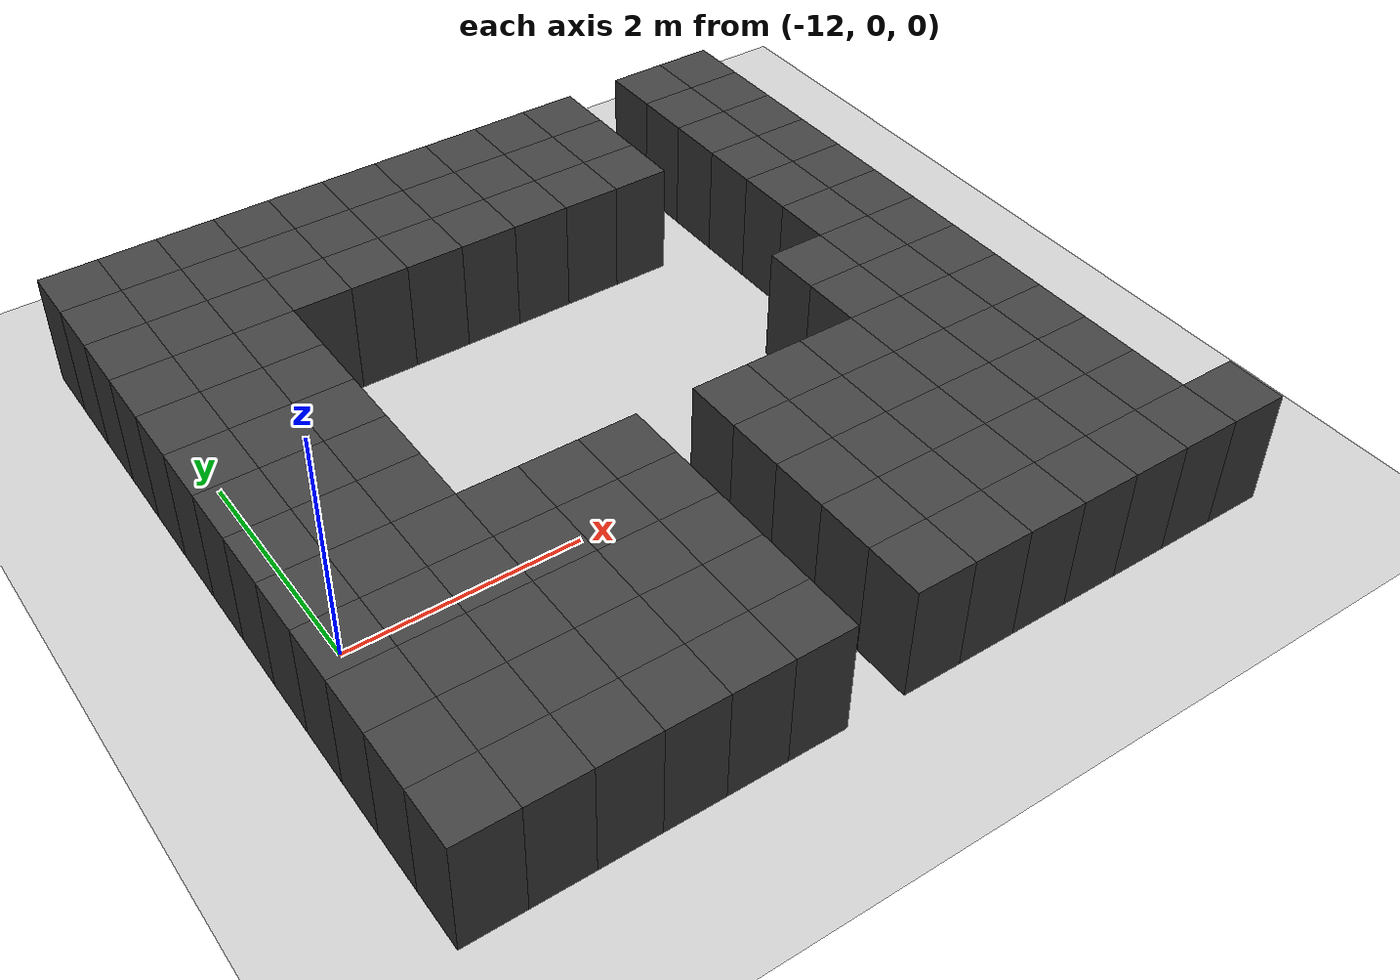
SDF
<sdf version="1.7">
 <world name="map_13994">
  <model name="ground_plane">
   <static>true</static>
   <link name="link">
    <collision name="collision">
     <geometry><plane><normal>0 0 1</normal><size>200 200</size></plane></geometry>
    </collision>
    <visual name="visual">
     <geometry><plane><normal>0 0 1</normal><size>200 200</size></plane></geometry>
     <material><ambient>0.8 0.8 0.8 1</ambient><diffuse>0.8 0.8 0.8 1</diffuse></material>
    </visual>
   </link>
  </model>
  <model name="maze_environment">
   <static>true</static>
   <link name="wall_521">
    <pose>-12.250 3.750 0.500 0 0 0</pose>
    <collision name="col"><geometry><box><size>0.5 0.5 1.0</size></box></geometry></collision>
    <visual name="vis">
     <geometry><box><size>0.5 0.5 1.0</size></box></geometry>
     <material><ambient>0.15 0.15 0.15 1</ambient><diffuse>0.25 0.25 0.25 1</diffuse></material>
    </visual>
   </link>
   <link name="wall_522">
    <pose>-11.750 3.750 0.500 0 0 0</pose>
    <collision name="col"><geometry><box><size>0.5 0.5 1.0</size></box></geometry></collision>
    <visual name="vis">
     <geometry><box><size>0.5 0.5 1.0</size></box></geometry>
     <material><ambient>0.15 0.15 0.15 1</ambient><diffuse>0.25 0.25 0.25 1</diffuse></material>
    </visual>
   </link>
   <link name="wall_523">
    <pose>-11.250 3.750 0.500 0 0 0</pose>
    <collision name="col"><geometry><box><size>0.5 0.5 1.0</size></box></geometry></collision>
    <visual name="vis">
     <geometry><box><size>0.5 0.5 1.0</size></box></geometry>
     <material><ambient>0.15 0.15 0.15 1</ambient><diffuse>0.25 0.25 0.25 1</diffuse></material>
    </visual>
   </link>
   <link name="wall_524">
    <pose>-10.750 3.750 0.500 0 0 0</pose>
    <collision name="col"><geometry><box><size>0.5 0.5 1.0</size></box></geometry></collision>
    <visual name="vis">
     <geometry><box><size>0.5 0.5 1.0</size></box></geometry>
     <material><ambient>0.15 0.15 0.15 1</ambient><diffuse>0.25 0.25 0.25 1</diffuse></material>
    </visual>
   </link>
   <link name="wall_525">
    <pose>-10.250 3.750 0.500 0 0 0</pose>
    <collision name="col"><geometry><box><size>0.5 0.5 1.0</size></box></geometry></collision>
    <visual name="vis">
     <geometry><box><size>0.5 0.5 1.0</size></box></geometry>
     <material><ambient>0.15 0.15 0.15 1</ambient><diffuse>0.25 0.25 0.25 1</diffuse></material>
    </visual>
   </link>
   <link name="wall_526">
    <pose>-9.750 3.750 0.500 0 0 0</pose>
    <collision name="col"><geometry><box><size>0.5 0.5 1.0</size></box></geometry></collision>
    <visual name="vis">
     <geometry><box><size>0.5 0.5 1.0</size></box></geometry>
     <material><ambient>0.15 0.15 0.15 1</ambient><diffuse>0.25 0.25 0.25 1</diffuse></material>
    </visual>
   </link>
   <link name="wall_527">
    <pose>-9.250 3.750 0.500 0 0 0</pose>
    <collision name="col"><geometry><box><size>0.5 0.5 1.0</size></box></geometry></collision>
    <visual name="vis">
     <geometry><box><size>0.5 0.5 1.0</size></box></geometry>
     <material><ambient>0.15 0.15 0.15 1</ambient><diffuse>0.25 0.25 0.25 1</diffuse></material>
    </visual>
   </link>
   <link name="wall_528">
    <pose>-8.750 3.750 0.500 0 0 0</pose>
    <collision name="col"><geometry><box><size>0.5 0.5 1.0</size></box></geometry></collision>
    <visual name="vis">
     <geometry><box><size>0.5 0.5 1.0</size></box></geometry>
     <material><ambient>0.15 0.15 0.15 1</ambient><diffuse>0.25 0.25 0.25 1</diffuse></material>
    </visual>
   </link>
   <link name="wall_529">
    <pose>-8.250 3.750 0.500 0 0 0</pose>
    <collision name="col"><geometry><box><size>0.5 0.5 1.0</size></box></geometry></collision>
    <visual name="vis">
     <geometry><box><size>0.5 0.5 1.0</size></box></geometry>
     <material><ambient>0.15 0.15 0.15 1</ambient><diffuse>0.25 0.25 0.25 1</diffuse></material>
    </visual>
   </link>
   <link name="wall_530">
    <pose>-7.750 3.750 0.500 0 0 0</pose>
    <collision name="col"><geometry><box><size>0.5 0.5 1.0</size></box></geometry></collision>
    <visual name="vis">
     <geometry><box><size>0.5 0.5 1.0</size></box></geometry>
     <material><ambient>0.15 0.15 0.15 1</ambient><diffuse>0.25 0.25 0.25 1</diffuse></material>
    </visual>
   </link>
   <link name="wall_531">
    <pose>-6.750 3.750 0.500 0 0 0</pose>
    <collision name="col"><geometry><box><size>0.5 0.5 1.0</size></box></geometry></collision>
    <visual name="vis">
     <geometry><box><size>0.5 0.5 1.0</size></box></geometry>
     <material><ambient>0.15 0.15 0.15 1</ambient><diffuse>0.25 0.25 0.25 1</diffuse></material>
    </visual>
   </link>
   <link name="wall_532">
    <pose>-6.250 3.750 0.500 0 0 0</pose>
    <collision name="col"><geometry><box><size>0.5 0.5 1.0</size></box></geometry></collision>
    <visual name="vis">
     <geometry><box><size>0.5 0.5 1.0</size></box></geometry>
     <material><ambient>0.15 0.15 0.15 1</ambient><diffuse>0.25 0.25 0.25 1</diffuse></material>
    </visual>
   </link>
   <link name="wall_561">
    <pose>-12.250 3.250 0.500 0 0 0</pose>
    <collision name="col"><geometry><box><size>0.5 0.5 1.0</size></box></geometry></collision>
    <visual name="vis">
     <geometry><box><size>0.5 0.5 1.0</size></box></geometry>
     <material><ambient>0.15 0.15 0.15 1</ambient><diffuse>0.25 0.25 0.25 1</diffuse></material>
    </visual>
   </link>
   <link name="wall_562">
    <pose>-11.750 3.250 0.500 0 0 0</pose>
    <collision name="col"><geometry><box><size>0.5 0.5 1.0</size></box></geometry></collision>
    <visual name="vis">
     <geometry><box><size>0.5 0.5 1.0</size></box></geometry>
     <material><ambient>0.15 0.15 0.15 1</ambient><diffuse>0.25 0.25 0.25 1</diffuse></material>
    </visual>
   </link>
   <link name="wall_563">
    <pose>-11.250 3.250 0.500 0 0 0</pose>
    <collision name="col"><geometry><box><size>0.5 0.5 1.0</size></box></geometry></collision>
    <visual name="vis">
     <geometry><box><size>0.5 0.5 1.0</size></box></geometry>
     <material><ambient>0.15 0.15 0.15 1</ambient><diffuse>0.25 0.25 0.25 1</diffuse></material>
    </visual>
   </link>
   <link name="wall_564">
    <pose>-10.750 3.250 0.500 0 0 0</pose>
    <collision name="col"><geometry><box><size>0.5 0.5 1.0</size></box></geometry></collision>
    <visual name="vis">
     <geometry><box><size>0.5 0.5 1.0</size></box></geometry>
     <material><ambient>0.15 0.15 0.15 1</ambient><diffuse>0.25 0.25 0.25 1</diffuse></material>
    </visual>
   </link>
   <link name="wall_565">
    <pose>-10.250 3.250 0.500 0 0 0</pose>
    <collision name="col"><geometry><box><size>0.5 0.5 1.0</size></box></geometry></collision>
    <visual name="vis">
     <geometry><box><size>0.5 0.5 1.0</size></box></geometry>
     <material><ambient>0.15 0.15 0.15 1</ambient><diffuse>0.25 0.25 0.25 1</diffuse></material>
    </visual>
   </link>
   <link name="wall_566">
    <pose>-9.750 3.250 0.500 0 0 0</pose>
    <collision name="col"><geometry><box><size>0.5 0.5 1.0</size></box></geometry></collision>
    <visual name="vis">
     <geometry><box><size>0.5 0.5 1.0</size></box></geometry>
     <material><ambient>0.15 0.15 0.15 1</ambient><diffuse>0.25 0.25 0.25 1</diffuse></material>
    </visual>
   </link>
   <link name="wall_567">
    <pose>-9.250 3.250 0.500 0 0 0</pose>
    <collision name="col"><geometry><box><size>0.5 0.5 1.0</size></box></geometry></collision>
    <visual name="vis">
     <geometry><box><size>0.5 0.5 1.0</size></box></geometry>
     <material><ambient>0.15 0.15 0.15 1</ambient><diffuse>0.25 0.25 0.25 1</diffuse></material>
    </visual>
   </link>
   <link name="wall_568">
    <pose>-8.750 3.250 0.500 0 0 0</pose>
    <collision name="col"><geometry><box><size>0.5 0.5 1.0</size></box></geometry></collision>
    <visual name="vis">
     <geometry><box><size>0.5 0.5 1.0</size></box></geometry>
     <material><ambient>0.15 0.15 0.15 1</ambient><diffuse>0.25 0.25 0.25 1</diffuse></material>
    </visual>
   </link>
   <link name="wall_569">
    <pose>-8.250 3.250 0.500 0 0 0</pose>
    <collision name="col"><geometry><box><size>0.5 0.5 1.0</size></box></geometry></collision>
    <visual name="vis">
     <geometry><box><size>0.5 0.5 1.0</size></box></geometry>
     <material><ambient>0.15 0.15 0.15 1</ambient><diffuse>0.25 0.25 0.25 1</diffuse></material>
    </visual>
   </link>
   <link name="wall_570">
    <pose>-7.750 3.250 0.500 0 0 0</pose>
    <collision name="col"><geometry><box><size>0.5 0.5 1.0</size></box></geometry></collision>
    <visual name="vis">
     <geometry><box><size>0.5 0.5 1.0</size></box></geometry>
     <material><ambient>0.15 0.15 0.15 1</ambient><diffuse>0.25 0.25 0.25 1</diffuse></material>
    </visual>
   </link>
   <link name="wall_571">
    <pose>-6.750 3.250 0.500 0 0 0</pose>
    <collision name="col"><geometry><box><size>0.5 0.5 1.0</size></box></geometry></collision>
    <visual name="vis">
     <geometry><box><size>0.5 0.5 1.0</size></box></geometry>
     <material><ambient>0.15 0.15 0.15 1</ambient><diffuse>0.25 0.25 0.25 1</diffuse></material>
    </visual>
   </link>
   <link name="wall_572">
    <pose>-6.250 3.250 0.500 0 0 0</pose>
    <collision name="col"><geometry><box><size>0.5 0.5 1.0</size></box></geometry></collision>
    <visual name="vis">
     <geometry><box><size>0.5 0.5 1.0</size></box></geometry>
     <material><ambient>0.15 0.15 0.15 1</ambient><diffuse>0.25 0.25 0.25 1</diffuse></material>
    </visual>
   </link>
   <link name="wall_601">
    <pose>-12.250 2.750 0.500 0 0 0</pose>
    <collision name="col"><geometry><box><size>0.5 0.5 1.0</size></box></geometry></collision>
    <visual name="vis">
     <geometry><box><size>0.5 0.5 1.0</size></box></geometry>
     <material><ambient>0.15 0.15 0.15 1</ambient><diffuse>0.25 0.25 0.25 1</diffuse></material>
    </visual>
   </link>
   <link name="wall_602">
    <pose>-11.750 2.750 0.500 0 0 0</pose>
    <collision name="col"><geometry><box><size>0.5 0.5 1.0</size></box></geometry></collision>
    <visual name="vis">
     <geometry><box><size>0.5 0.5 1.0</size></box></geometry>
     <material><ambient>0.15 0.15 0.15 1</ambient><diffuse>0.25 0.25 0.25 1</diffuse></material>
    </visual>
   </link>
   <link name="wall_603">
    <pose>-11.250 2.750 0.500 0 0 0</pose>
    <collision name="col"><geometry><box><size>0.5 0.5 1.0</size></box></geometry></collision>
    <visual name="vis">
     <geometry><box><size>0.5 0.5 1.0</size></box></geometry>
     <material><ambient>0.15 0.15 0.15 1</ambient><diffuse>0.25 0.25 0.25 1</diffuse></material>
    </visual>
   </link>
   <link name="wall_604">
    <pose>-10.750 2.750 0.500 0 0 0</pose>
    <collision name="col"><geometry><box><size>0.5 0.5 1.0</size></box></geometry></collision>
    <visual name="vis">
     <geometry><box><size>0.5 0.5 1.0</size></box></geometry>
     <material><ambient>0.15 0.15 0.15 1</ambient><diffuse>0.25 0.25 0.25 1</diffuse></material>
    </visual>
   </link>
   <link name="wall_605">
    <pose>-10.250 2.750 0.500 0 0 0</pose>
    <collision name="col"><geometry><box><size>0.5 0.5 1.0</size></box></geometry></collision>
    <visual name="vis">
     <geometry><box><size>0.5 0.5 1.0</size></box></geometry>
     <material><ambient>0.15 0.15 0.15 1</ambient><diffuse>0.25 0.25 0.25 1</diffuse></material>
    </visual>
   </link>
   <link name="wall_606">
    <pose>-9.750 2.750 0.500 0 0 0</pose>
    <collision name="col"><geometry><box><size>0.5 0.5 1.0</size></box></geometry></collision>
    <visual name="vis">
     <geometry><box><size>0.5 0.5 1.0</size></box></geometry>
     <material><ambient>0.15 0.15 0.15 1</ambient><diffuse>0.25 0.25 0.25 1</diffuse></material>
    </visual>
   </link>
   <link name="wall_607">
    <pose>-9.250 2.750 0.500 0 0 0</pose>
    <collision name="col"><geometry><box><size>0.5 0.5 1.0</size></box></geometry></collision>
    <visual name="vis">
     <geometry><box><size>0.5 0.5 1.0</size></box></geometry>
     <material><ambient>0.15 0.15 0.15 1</ambient><diffuse>0.25 0.25 0.25 1</diffuse></material>
    </visual>
   </link>
   <link name="wall_608">
    <pose>-8.750 2.750 0.500 0 0 0</pose>
    <collision name="col"><geometry><box><size>0.5 0.5 1.0</size></box></geometry></collision>
    <visual name="vis">
     <geometry><box><size>0.5 0.5 1.0</size></box></geometry>
     <material><ambient>0.15 0.15 0.15 1</ambient><diffuse>0.25 0.25 0.25 1</diffuse></material>
    </visual>
   </link>
   <link name="wall_609">
    <pose>-8.250 2.750 0.500 0 0 0</pose>
    <collision name="col"><geometry><box><size>0.5 0.5 1.0</size></box></geometry></collision>
    <visual name="vis">
     <geometry><box><size>0.5 0.5 1.0</size></box></geometry>
     <material><ambient>0.15 0.15 0.15 1</ambient><diffuse>0.25 0.25 0.25 1</diffuse></material>
    </visual>
   </link>
   <link name="wall_610">
    <pose>-7.750 2.750 0.500 0 0 0</pose>
    <collision name="col"><geometry><box><size>0.5 0.5 1.0</size></box></geometry></collision>
    <visual name="vis">
     <geometry><box><size>0.5 0.5 1.0</size></box></geometry>
     <material><ambient>0.15 0.15 0.15 1</ambient><diffuse>0.25 0.25 0.25 1</diffuse></material>
    </visual>
   </link>
   <link name="wall_611">
    <pose>-6.750 2.750 0.500 0 0 0</pose>
    <collision name="col"><geometry><box><size>0.5 0.5 1.0</size></box></geometry></collision>
    <visual name="vis">
     <geometry><box><size>0.5 0.5 1.0</size></box></geometry>
     <material><ambient>0.15 0.15 0.15 1</ambient><diffuse>0.25 0.25 0.25 1</diffuse></material>
    </visual>
   </link>
   <link name="wall_612">
    <pose>-6.250 2.750 0.500 0 0 0</pose>
    <collision name="col"><geometry><box><size>0.5 0.5 1.0</size></box></geometry></collision>
    <visual name="vis">
     <geometry><box><size>0.5 0.5 1.0</size></box></geometry>
     <material><ambient>0.15 0.15 0.15 1</ambient><diffuse>0.25 0.25 0.25 1</diffuse></material>
    </visual>
   </link>
   <link name="wall_637">
    <pose>-12.250 2.250 0.500 0 0 0</pose>
    <collision name="col"><geometry><box><size>0.5 0.5 1.0</size></box></geometry></collision>
    <visual name="vis">
     <geometry><box><size>0.5 0.5 1.0</size></box></geometry>
     <material><ambient>0.15 0.15 0.15 1</ambient><diffuse>0.25 0.25 0.25 1</diffuse></material>
    </visual>
   </link>
   <link name="wall_638">
    <pose>-11.750 2.250 0.500 0 0 0</pose>
    <collision name="col"><geometry><box><size>0.5 0.5 1.0</size></box></geometry></collision>
    <visual name="vis">
     <geometry><box><size>0.5 0.5 1.0</size></box></geometry>
     <material><ambient>0.15 0.15 0.15 1</ambient><diffuse>0.25 0.25 0.25 1</diffuse></material>
    </visual>
   </link>
   <link name="wall_639">
    <pose>-11.250 2.250 0.500 0 0 0</pose>
    <collision name="col"><geometry><box><size>0.5 0.5 1.0</size></box></geometry></collision>
    <visual name="vis">
     <geometry><box><size>0.5 0.5 1.0</size></box></geometry>
     <material><ambient>0.15 0.15 0.15 1</ambient><diffuse>0.25 0.25 0.25 1</diffuse></material>
    </visual>
   </link>
   <link name="wall_640">
    <pose>-6.750 2.250 0.500 0 0 0</pose>
    <collision name="col"><geometry><box><size>0.5 0.5 1.0</size></box></geometry></collision>
    <visual name="vis">
     <geometry><box><size>0.5 0.5 1.0</size></box></geometry>
     <material><ambient>0.15 0.15 0.15 1</ambient><diffuse>0.25 0.25 0.25 1</diffuse></material>
    </visual>
   </link>
   <link name="wall_641">
    <pose>-6.250 2.250 0.500 0 0 0</pose>
    <collision name="col"><geometry><box><size>0.5 0.5 1.0</size></box></geometry></collision>
    <visual name="vis">
     <geometry><box><size>0.5 0.5 1.0</size></box></geometry>
     <material><ambient>0.15 0.15 0.15 1</ambient><diffuse>0.25 0.25 0.25 1</diffuse></material>
    </visual>
   </link>
   <link name="wall_666">
    <pose>-12.250 1.750 0.500 0 0 0</pose>
    <collision name="col"><geometry><box><size>0.5 0.5 1.0</size></box></geometry></collision>
    <visual name="vis">
     <geometry><box><size>0.5 0.5 1.0</size></box></geometry>
     <material><ambient>0.15 0.15 0.15 1</ambient><diffuse>0.25 0.25 0.25 1</diffuse></material>
    </visual>
   </link>
   <link name="wall_667">
    <pose>-11.750 1.750 0.500 0 0 0</pose>
    <collision name="col"><geometry><box><size>0.5 0.5 1.0</size></box></geometry></collision>
    <visual name="vis">
     <geometry><box><size>0.5 0.5 1.0</size></box></geometry>
     <material><ambient>0.15 0.15 0.15 1</ambient><diffuse>0.25 0.25 0.25 1</diffuse></material>
    </visual>
   </link>
   <link name="wall_668">
    <pose>-11.250 1.750 0.500 0 0 0</pose>
    <collision name="col"><geometry><box><size>0.5 0.5 1.0</size></box></geometry></collision>
    <visual name="vis">
     <geometry><box><size>0.5 0.5 1.0</size></box></geometry>
     <material><ambient>0.15 0.15 0.15 1</ambient><diffuse>0.25 0.25 0.25 1</diffuse></material>
    </visual>
   </link>
   <link name="wall_669">
    <pose>-6.750 1.750 0.500 0 0 0</pose>
    <collision name="col"><geometry><box><size>0.5 0.5 1.0</size></box></geometry></collision>
    <visual name="vis">
     <geometry><box><size>0.5 0.5 1.0</size></box></geometry>
     <material><ambient>0.15 0.15 0.15 1</ambient><diffuse>0.25 0.25 0.25 1</diffuse></material>
    </visual>
   </link>
   <link name="wall_670">
    <pose>-6.250 1.750 0.500 0 0 0</pose>
    <collision name="col"><geometry><box><size>0.5 0.5 1.0</size></box></geometry></collision>
    <visual name="vis">
     <geometry><box><size>0.5 0.5 1.0</size></box></geometry>
     <material><ambient>0.15 0.15 0.15 1</ambient><diffuse>0.25 0.25 0.25 1</diffuse></material>
    </visual>
   </link>
   <link name="wall_698">
    <pose>-12.250 1.250 0.500 0 0 0</pose>
    <collision name="col"><geometry><box><size>0.5 0.5 1.0</size></box></geometry></collision>
    <visual name="vis">
     <geometry><box><size>0.5 0.5 1.0</size></box></geometry>
     <material><ambient>0.15 0.15 0.15 1</ambient><diffuse>0.25 0.25 0.25 1</diffuse></material>
    </visual>
   </link>
   <link name="wall_699">
    <pose>-11.750 1.250 0.500 0 0 0</pose>
    <collision name="col"><geometry><box><size>0.5 0.5 1.0</size></box></geometry></collision>
    <visual name="vis">
     <geometry><box><size>0.5 0.5 1.0</size></box></geometry>
     <material><ambient>0.15 0.15 0.15 1</ambient><diffuse>0.25 0.25 0.25 1</diffuse></material>
    </visual>
   </link>
   <link name="wall_700">
    <pose>-11.250 1.250 0.500 0 0 0</pose>
    <collision name="col"><geometry><box><size>0.5 0.5 1.0</size></box></geometry></collision>
    <visual name="vis">
     <geometry><box><size>0.5 0.5 1.0</size></box></geometry>
     <material><ambient>0.15 0.15 0.15 1</ambient><diffuse>0.25 0.25 0.25 1</diffuse></material>
    </visual>
   </link>
   <link name="wall_701">
    <pose>-6.750 1.250 0.500 0 0 0</pose>
    <collision name="col"><geometry><box><size>0.5 0.5 1.0</size></box></geometry></collision>
    <visual name="vis">
     <geometry><box><size>0.5 0.5 1.0</size></box></geometry>
     <material><ambient>0.15 0.15 0.15 1</ambient><diffuse>0.25 0.25 0.25 1</diffuse></material>
    </visual>
   </link>
   <link name="wall_702">
    <pose>-6.250 1.250 0.500 0 0 0</pose>
    <collision name="col"><geometry><box><size>0.5 0.5 1.0</size></box></geometry></collision>
    <visual name="vis">
     <geometry><box><size>0.5 0.5 1.0</size></box></geometry>
     <material><ambient>0.15 0.15 0.15 1</ambient><diffuse>0.25 0.25 0.25 1</diffuse></material>
    </visual>
   </link>
   <link name="wall_730">
    <pose>-12.250 0.750 0.500 0 0 0</pose>
    <collision name="col"><geometry><box><size>0.5 0.5 1.0</size></box></geometry></collision>
    <visual name="vis">
     <geometry><box><size>0.5 0.5 1.0</size></box></geometry>
     <material><ambient>0.15 0.15 0.15 1</ambient><diffuse>0.25 0.25 0.25 1</diffuse></material>
    </visual>
   </link>
   <link name="wall_731">
    <pose>-11.750 0.750 0.500 0 0 0</pose>
    <collision name="col"><geometry><box><size>0.5 0.5 1.0</size></box></geometry></collision>
    <visual name="vis">
     <geometry><box><size>0.5 0.5 1.0</size></box></geometry>
     <material><ambient>0.15 0.15 0.15 1</ambient><diffuse>0.25 0.25 0.25 1</diffuse></material>
    </visual>
   </link>
   <link name="wall_732">
    <pose>-11.250 0.750 0.500 0 0 0</pose>
    <collision name="col"><geometry><box><size>0.5 0.5 1.0</size></box></geometry></collision>
    <visual name="vis">
     <geometry><box><size>0.5 0.5 1.0</size></box></geometry>
     <material><ambient>0.15 0.15 0.15 1</ambient><diffuse>0.25 0.25 0.25 1</diffuse></material>
    </visual>
   </link>
   <link name="wall_733">
    <pose>-7.250 0.750 0.500 0 0 0</pose>
    <collision name="col"><geometry><box><size>0.5 0.5 1.0</size></box></geometry></collision>
    <visual name="vis">
     <geometry><box><size>0.5 0.5 1.0</size></box></geometry>
     <material><ambient>0.15 0.15 0.15 1</ambient><diffuse>0.25 0.25 0.25 1</diffuse></material>
    </visual>
   </link>
   <link name="wall_734">
    <pose>-6.750 0.750 0.500 0 0 0</pose>
    <collision name="col"><geometry><box><size>0.5 0.5 1.0</size></box></geometry></collision>
    <visual name="vis">
     <geometry><box><size>0.5 0.5 1.0</size></box></geometry>
     <material><ambient>0.15 0.15 0.15 1</ambient><diffuse>0.25 0.25 0.25 1</diffuse></material>
    </visual>
   </link>
   <link name="wall_735">
    <pose>-6.250 0.750 0.500 0 0 0</pose>
    <collision name="col"><geometry><box><size>0.5 0.5 1.0</size></box></geometry></collision>
    <visual name="vis">
     <geometry><box><size>0.5 0.5 1.0</size></box></geometry>
     <material><ambient>0.15 0.15 0.15 1</ambient><diffuse>0.25 0.25 0.25 1</diffuse></material>
    </visual>
   </link>
   <link name="wall_756">
    <pose>-12.250 0.250 0.500 0 0 0</pose>
    <collision name="col"><geometry><box><size>0.5 0.5 1.0</size></box></geometry></collision>
    <visual name="vis">
     <geometry><box><size>0.5 0.5 1.0</size></box></geometry>
     <material><ambient>0.15 0.15 0.15 1</ambient><diffuse>0.25 0.25 0.25 1</diffuse></material>
    </visual>
   </link>
   <link name="wall_757">
    <pose>-11.750 0.250 0.500 0 0 0</pose>
    <collision name="col"><geometry><box><size>0.5 0.5 1.0</size></box></geometry></collision>
    <visual name="vis">
     <geometry><box><size>0.5 0.5 1.0</size></box></geometry>
     <material><ambient>0.15 0.15 0.15 1</ambient><diffuse>0.25 0.25 0.25 1</diffuse></material>
    </visual>
   </link>
   <link name="wall_758">
    <pose>-11.250 0.250 0.500 0 0 0</pose>
    <collision name="col"><geometry><box><size>0.5 0.5 1.0</size></box></geometry></collision>
    <visual name="vis">
     <geometry><box><size>0.5 0.5 1.0</size></box></geometry>
     <material><ambient>0.15 0.15 0.15 1</ambient><diffuse>0.25 0.25 0.25 1</diffuse></material>
    </visual>
   </link>
   <link name="wall_759">
    <pose>-7.250 0.250 0.500 0 0 0</pose>
    <collision name="col"><geometry><box><size>0.5 0.5 1.0</size></box></geometry></collision>
    <visual name="vis">
     <geometry><box><size>0.5 0.5 1.0</size></box></geometry>
     <material><ambient>0.15 0.15 0.15 1</ambient><diffuse>0.25 0.25 0.25 1</diffuse></material>
    </visual>
   </link>
   <link name="wall_760">
    <pose>-6.750 0.250 0.500 0 0 0</pose>
    <collision name="col"><geometry><box><size>0.5 0.5 1.0</size></box></geometry></collision>
    <visual name="vis">
     <geometry><box><size>0.5 0.5 1.0</size></box></geometry>
     <material><ambient>0.15 0.15 0.15 1</ambient><diffuse>0.25 0.25 0.25 1</diffuse></material>
    </visual>
   </link>
   <link name="wall_761">
    <pose>-6.250 0.250 0.500 0 0 0</pose>
    <collision name="col"><geometry><box><size>0.5 0.5 1.0</size></box></geometry></collision>
    <visual name="vis">
     <geometry><box><size>0.5 0.5 1.0</size></box></geometry>
     <material><ambient>0.15 0.15 0.15 1</ambient><diffuse>0.25 0.25 0.25 1</diffuse></material>
    </visual>
   </link>
   <link name="wall_785">
    <pose>-12.250 -0.250 0.500 0 0 0</pose>
    <collision name="col"><geometry><box><size>0.5 0.5 1.0</size></box></geometry></collision>
    <visual name="vis">
     <geometry><box><size>0.5 0.5 1.0</size></box></geometry>
     <material><ambient>0.15 0.15 0.15 1</ambient><diffuse>0.25 0.25 0.25 1</diffuse></material>
    </visual>
   </link>
   <link name="wall_786">
    <pose>-11.750 -0.250 0.500 0 0 0</pose>
    <collision name="col"><geometry><box><size>0.5 0.5 1.0</size></box></geometry></collision>
    <visual name="vis">
     <geometry><box><size>0.5 0.5 1.0</size></box></geometry>
     <material><ambient>0.15 0.15 0.15 1</ambient><diffuse>0.25 0.25 0.25 1</diffuse></material>
    </visual>
   </link>
   <link name="wall_787">
    <pose>-11.250 -0.250 0.500 0 0 0</pose>
    <collision name="col"><geometry><box><size>0.5 0.5 1.0</size></box></geometry></collision>
    <visual name="vis">
     <geometry><box><size>0.5 0.5 1.0</size></box></geometry>
     <material><ambient>0.15 0.15 0.15 1</ambient><diffuse>0.25 0.25 0.25 1</diffuse></material>
    </visual>
   </link>
   <link name="wall_788">
    <pose>-10.750 -0.250 0.500 0 0 0</pose>
    <collision name="col"><geometry><box><size>0.5 0.5 1.0</size></box></geometry></collision>
    <visual name="vis">
     <geometry><box><size>0.5 0.5 1.0</size></box></geometry>
     <material><ambient>0.15 0.15 0.15 1</ambient><diffuse>0.25 0.25 0.25 1</diffuse></material>
    </visual>
   </link>
   <link name="wall_789">
    <pose>-10.250 -0.250 0.500 0 0 0</pose>
    <collision name="col"><geometry><box><size>0.5 0.5 1.0</size></box></geometry></collision>
    <visual name="vis">
     <geometry><box><size>0.5 0.5 1.0</size></box></geometry>
     <material><ambient>0.15 0.15 0.15 1</ambient><diffuse>0.25 0.25 0.25 1</diffuse></material>
    </visual>
   </link>
   <link name="wall_790">
    <pose>-9.750 -0.250 0.500 0 0 0</pose>
    <collision name="col"><geometry><box><size>0.5 0.5 1.0</size></box></geometry></collision>
    <visual name="vis">
     <geometry><box><size>0.5 0.5 1.0</size></box></geometry>
     <material><ambient>0.15 0.15 0.15 1</ambient><diffuse>0.25 0.25 0.25 1</diffuse></material>
    </visual>
   </link>
   <link name="wall_791">
    <pose>-8.750 -0.250 0.500 0 0 0</pose>
    <collision name="col"><geometry><box><size>0.5 0.5 1.0</size></box></geometry></collision>
    <visual name="vis">
     <geometry><box><size>0.5 0.5 1.0</size></box></geometry>
     <material><ambient>0.15 0.15 0.15 1</ambient><diffuse>0.25 0.25 0.25 1</diffuse></material>
    </visual>
   </link>
   <link name="wall_792">
    <pose>-8.250 -0.250 0.500 0 0 0</pose>
    <collision name="col"><geometry><box><size>0.5 0.5 1.0</size></box></geometry></collision>
    <visual name="vis">
     <geometry><box><size>0.5 0.5 1.0</size></box></geometry>
     <material><ambient>0.15 0.15 0.15 1</ambient><diffuse>0.25 0.25 0.25 1</diffuse></material>
    </visual>
   </link>
   <link name="wall_793">
    <pose>-7.750 -0.250 0.500 0 0 0</pose>
    <collision name="col"><geometry><box><size>0.5 0.5 1.0</size></box></geometry></collision>
    <visual name="vis">
     <geometry><box><size>0.5 0.5 1.0</size></box></geometry>
     <material><ambient>0.15 0.15 0.15 1</ambient><diffuse>0.25 0.25 0.25 1</diffuse></material>
    </visual>
   </link>
   <link name="wall_794">
    <pose>-7.250 -0.250 0.500 0 0 0</pose>
    <collision name="col"><geometry><box><size>0.5 0.5 1.0</size></box></geometry></collision>
    <visual name="vis">
     <geometry><box><size>0.5 0.5 1.0</size></box></geometry>
     <material><ambient>0.15 0.15 0.15 1</ambient><diffuse>0.25 0.25 0.25 1</diffuse></material>
    </visual>
   </link>
   <link name="wall_795">
    <pose>-6.750 -0.250 0.500 0 0 0</pose>
    <collision name="col"><geometry><box><size>0.5 0.5 1.0</size></box></geometry></collision>
    <visual name="vis">
     <geometry><box><size>0.5 0.5 1.0</size></box></geometry>
     <material><ambient>0.15 0.15 0.15 1</ambient><diffuse>0.25 0.25 0.25 1</diffuse></material>
    </visual>
   </link>
   <link name="wall_796">
    <pose>-6.250 -0.250 0.500 0 0 0</pose>
    <collision name="col"><geometry><box><size>0.5 0.5 1.0</size></box></geometry></collision>
    <visual name="vis">
     <geometry><box><size>0.5 0.5 1.0</size></box></geometry>
     <material><ambient>0.15 0.15 0.15 1</ambient><diffuse>0.25 0.25 0.25 1</diffuse></material>
    </visual>
   </link>
   <link name="wall_816">
    <pose>-12.250 -0.750 0.500 0 0 0</pose>
    <collision name="col"><geometry><box><size>0.5 0.5 1.0</size></box></geometry></collision>
    <visual name="vis">
     <geometry><box><size>0.5 0.5 1.0</size></box></geometry>
     <material><ambient>0.15 0.15 0.15 1</ambient><diffuse>0.25 0.25 0.25 1</diffuse></material>
    </visual>
   </link>
   <link name="wall_817">
    <pose>-11.750 -0.750 0.500 0 0 0</pose>
    <collision name="col"><geometry><box><size>0.5 0.5 1.0</size></box></geometry></collision>
    <visual name="vis">
     <geometry><box><size>0.5 0.5 1.0</size></box></geometry>
     <material><ambient>0.15 0.15 0.15 1</ambient><diffuse>0.25 0.25 0.25 1</diffuse></material>
    </visual>
   </link>
   <link name="wall_818">
    <pose>-11.250 -0.750 0.500 0 0 0</pose>
    <collision name="col"><geometry><box><size>0.5 0.5 1.0</size></box></geometry></collision>
    <visual name="vis">
     <geometry><box><size>0.5 0.5 1.0</size></box></geometry>
     <material><ambient>0.15 0.15 0.15 1</ambient><diffuse>0.25 0.25 0.25 1</diffuse></material>
    </visual>
   </link>
   <link name="wall_819">
    <pose>-10.750 -0.750 0.500 0 0 0</pose>
    <collision name="col"><geometry><box><size>0.5 0.5 1.0</size></box></geometry></collision>
    <visual name="vis">
     <geometry><box><size>0.5 0.5 1.0</size></box></geometry>
     <material><ambient>0.15 0.15 0.15 1</ambient><diffuse>0.25 0.25 0.25 1</diffuse></material>
    </visual>
   </link>
   <link name="wall_820">
    <pose>-10.250 -0.750 0.500 0 0 0</pose>
    <collision name="col"><geometry><box><size>0.5 0.5 1.0</size></box></geometry></collision>
    <visual name="vis">
     <geometry><box><size>0.5 0.5 1.0</size></box></geometry>
     <material><ambient>0.15 0.15 0.15 1</ambient><diffuse>0.25 0.25 0.25 1</diffuse></material>
    </visual>
   </link>
   <link name="wall_821">
    <pose>-9.750 -0.750 0.500 0 0 0</pose>
    <collision name="col"><geometry><box><size>0.5 0.5 1.0</size></box></geometry></collision>
    <visual name="vis">
     <geometry><box><size>0.5 0.5 1.0</size></box></geometry>
     <material><ambient>0.15 0.15 0.15 1</ambient><diffuse>0.25 0.25 0.25 1</diffuse></material>
    </visual>
   </link>
   <link name="wall_822">
    <pose>-8.750 -0.750 0.500 0 0 0</pose>
    <collision name="col"><geometry><box><size>0.5 0.5 1.0</size></box></geometry></collision>
    <visual name="vis">
     <geometry><box><size>0.5 0.5 1.0</size></box></geometry>
     <material><ambient>0.15 0.15 0.15 1</ambient><diffuse>0.25 0.25 0.25 1</diffuse></material>
    </visual>
   </link>
   <link name="wall_823">
    <pose>-8.250 -0.750 0.500 0 0 0</pose>
    <collision name="col"><geometry><box><size>0.5 0.5 1.0</size></box></geometry></collision>
    <visual name="vis">
     <geometry><box><size>0.5 0.5 1.0</size></box></geometry>
     <material><ambient>0.15 0.15 0.15 1</ambient><diffuse>0.25 0.25 0.25 1</diffuse></material>
    </visual>
   </link>
   <link name="wall_824">
    <pose>-7.750 -0.750 0.500 0 0 0</pose>
    <collision name="col"><geometry><box><size>0.5 0.5 1.0</size></box></geometry></collision>
    <visual name="vis">
     <geometry><box><size>0.5 0.5 1.0</size></box></geometry>
     <material><ambient>0.15 0.15 0.15 1</ambient><diffuse>0.25 0.25 0.25 1</diffuse></material>
    </visual>
   </link>
   <link name="wall_825">
    <pose>-7.250 -0.750 0.500 0 0 0</pose>
    <collision name="col"><geometry><box><size>0.5 0.5 1.0</size></box></geometry></collision>
    <visual name="vis">
     <geometry><box><size>0.5 0.5 1.0</size></box></geometry>
     <material><ambient>0.15 0.15 0.15 1</ambient><diffuse>0.25 0.25 0.25 1</diffuse></material>
    </visual>
   </link>
   <link name="wall_826">
    <pose>-6.750 -0.750 0.500 0 0 0</pose>
    <collision name="col"><geometry><box><size>0.5 0.5 1.0</size></box></geometry></collision>
    <visual name="vis">
     <geometry><box><size>0.5 0.5 1.0</size></box></geometry>
     <material><ambient>0.15 0.15 0.15 1</ambient><diffuse>0.25 0.25 0.25 1</diffuse></material>
    </visual>
   </link>
   <link name="wall_827">
    <pose>-6.250 -0.750 0.500 0 0 0</pose>
    <collision name="col"><geometry><box><size>0.5 0.5 1.0</size></box></geometry></collision>
    <visual name="vis">
     <geometry><box><size>0.5 0.5 1.0</size></box></geometry>
     <material><ambient>0.15 0.15 0.15 1</ambient><diffuse>0.25 0.25 0.25 1</diffuse></material>
    </visual>
   </link>
   <link name="wall_852">
    <pose>-12.250 -1.250 0.500 0 0 0</pose>
    <collision name="col"><geometry><box><size>0.5 0.5 1.0</size></box></geometry></collision>
    <visual name="vis">
     <geometry><box><size>0.5 0.5 1.0</size></box></geometry>
     <material><ambient>0.15 0.15 0.15 1</ambient><diffuse>0.25 0.25 0.25 1</diffuse></material>
    </visual>
   </link>
   <link name="wall_853">
    <pose>-11.750 -1.250 0.500 0 0 0</pose>
    <collision name="col"><geometry><box><size>0.5 0.5 1.0</size></box></geometry></collision>
    <visual name="vis">
     <geometry><box><size>0.5 0.5 1.0</size></box></geometry>
     <material><ambient>0.15 0.15 0.15 1</ambient><diffuse>0.25 0.25 0.25 1</diffuse></material>
    </visual>
   </link>
   <link name="wall_854">
    <pose>-11.250 -1.250 0.500 0 0 0</pose>
    <collision name="col"><geometry><box><size>0.5 0.5 1.0</size></box></geometry></collision>
    <visual name="vis">
     <geometry><box><size>0.5 0.5 1.0</size></box></geometry>
     <material><ambient>0.15 0.15 0.15 1</ambient><diffuse>0.25 0.25 0.25 1</diffuse></material>
    </visual>
   </link>
   <link name="wall_855">
    <pose>-10.750 -1.250 0.500 0 0 0</pose>
    <collision name="col"><geometry><box><size>0.5 0.5 1.0</size></box></geometry></collision>
    <visual name="vis">
     <geometry><box><size>0.5 0.5 1.0</size></box></geometry>
     <material><ambient>0.15 0.15 0.15 1</ambient><diffuse>0.25 0.25 0.25 1</diffuse></material>
    </visual>
   </link>
   <link name="wall_856">
    <pose>-10.250 -1.250 0.500 0 0 0</pose>
    <collision name="col"><geometry><box><size>0.5 0.5 1.0</size></box></geometry></collision>
    <visual name="vis">
     <geometry><box><size>0.5 0.5 1.0</size></box></geometry>
     <material><ambient>0.15 0.15 0.15 1</ambient><diffuse>0.25 0.25 0.25 1</diffuse></material>
    </visual>
   </link>
   <link name="wall_857">
    <pose>-9.750 -1.250 0.500 0 0 0</pose>
    <collision name="col"><geometry><box><size>0.5 0.5 1.0</size></box></geometry></collision>
    <visual name="vis">
     <geometry><box><size>0.5 0.5 1.0</size></box></geometry>
     <material><ambient>0.15 0.15 0.15 1</ambient><diffuse>0.25 0.25 0.25 1</diffuse></material>
    </visual>
   </link>
   <link name="wall_858">
    <pose>-8.750 -1.250 0.500 0 0 0</pose>
    <collision name="col"><geometry><box><size>0.5 0.5 1.0</size></box></geometry></collision>
    <visual name="vis">
     <geometry><box><size>0.5 0.5 1.0</size></box></geometry>
     <material><ambient>0.15 0.15 0.15 1</ambient><diffuse>0.25 0.25 0.25 1</diffuse></material>
    </visual>
   </link>
   <link name="wall_859">
    <pose>-8.250 -1.250 0.500 0 0 0</pose>
    <collision name="col"><geometry><box><size>0.5 0.5 1.0</size></box></geometry></collision>
    <visual name="vis">
     <geometry><box><size>0.5 0.5 1.0</size></box></geometry>
     <material><ambient>0.15 0.15 0.15 1</ambient><diffuse>0.25 0.25 0.25 1</diffuse></material>
    </visual>
   </link>
   <link name="wall_860">
    <pose>-7.750 -1.250 0.500 0 0 0</pose>
    <collision name="col"><geometry><box><size>0.5 0.5 1.0</size></box></geometry></collision>
    <visual name="vis">
     <geometry><box><size>0.5 0.5 1.0</size></box></geometry>
     <material><ambient>0.15 0.15 0.15 1</ambient><diffuse>0.25 0.25 0.25 1</diffuse></material>
    </visual>
   </link>
   <link name="wall_861">
    <pose>-7.250 -1.250 0.500 0 0 0</pose>
    <collision name="col"><geometry><box><size>0.5 0.5 1.0</size></box></geometry></collision>
    <visual name="vis">
     <geometry><box><size>0.5 0.5 1.0</size></box></geometry>
     <material><ambient>0.15 0.15 0.15 1</ambient><diffuse>0.25 0.25 0.25 1</diffuse></material>
    </visual>
   </link>
   <link name="wall_862">
    <pose>-6.750 -1.250 0.500 0 0 0</pose>
    <collision name="col"><geometry><box><size>0.5 0.5 1.0</size></box></geometry></collision>
    <visual name="vis">
     <geometry><box><size>0.5 0.5 1.0</size></box></geometry>
     <material><ambient>0.15 0.15 0.15 1</ambient><diffuse>0.25 0.25 0.25 1</diffuse></material>
    </visual>
   </link>
   <link name="wall_863">
    <pose>-6.250 -1.250 0.500 0 0 0</pose>
    <collision name="col"><geometry><box><size>0.5 0.5 1.0</size></box></geometry></collision>
    <visual name="vis">
     <geometry><box><size>0.5 0.5 1.0</size></box></geometry>
     <material><ambient>0.15 0.15 0.15 1</ambient><diffuse>0.25 0.25 0.25 1</diffuse></material>
    </visual>
   </link>
   <link name="wall_893">
    <pose>-12.250 -1.750 0.500 0 0 0</pose>
    <collision name="col"><geometry><box><size>0.5 0.5 1.0</size></box></geometry></collision>
    <visual name="vis">
     <geometry><box><size>0.5 0.5 1.0</size></box></geometry>
     <material><ambient>0.15 0.15 0.15 1</ambient><diffuse>0.25 0.25 0.25 1</diffuse></material>
    </visual>
   </link>
   <link name="wall_894">
    <pose>-11.750 -1.750 0.500 0 0 0</pose>
    <collision name="col"><geometry><box><size>0.5 0.5 1.0</size></box></geometry></collision>
    <visual name="vis">
     <geometry><box><size>0.5 0.5 1.0</size></box></geometry>
     <material><ambient>0.15 0.15 0.15 1</ambient><diffuse>0.25 0.25 0.25 1</diffuse></material>
    </visual>
   </link>
   <link name="wall_895">
    <pose>-11.250 -1.750 0.500 0 0 0</pose>
    <collision name="col"><geometry><box><size>0.5 0.5 1.0</size></box></geometry></collision>
    <visual name="vis">
     <geometry><box><size>0.5 0.5 1.0</size></box></geometry>
     <material><ambient>0.15 0.15 0.15 1</ambient><diffuse>0.25 0.25 0.25 1</diffuse></material>
    </visual>
   </link>
   <link name="wall_896">
    <pose>-10.750 -1.750 0.500 0 0 0</pose>
    <collision name="col"><geometry><box><size>0.5 0.5 1.0</size></box></geometry></collision>
    <visual name="vis">
     <geometry><box><size>0.5 0.5 1.0</size></box></geometry>
     <material><ambient>0.15 0.15 0.15 1</ambient><diffuse>0.25 0.25 0.25 1</diffuse></material>
    </visual>
   </link>
   <link name="wall_897">
    <pose>-10.250 -1.750 0.500 0 0 0</pose>
    <collision name="col"><geometry><box><size>0.5 0.5 1.0</size></box></geometry></collision>
    <visual name="vis">
     <geometry><box><size>0.5 0.5 1.0</size></box></geometry>
     <material><ambient>0.15 0.15 0.15 1</ambient><diffuse>0.25 0.25 0.25 1</diffuse></material>
    </visual>
   </link>
   <link name="wall_898">
    <pose>-9.750 -1.750 0.500 0 0 0</pose>
    <collision name="col"><geometry><box><size>0.5 0.5 1.0</size></box></geometry></collision>
    <visual name="vis">
     <geometry><box><size>0.5 0.5 1.0</size></box></geometry>
     <material><ambient>0.15 0.15 0.15 1</ambient><diffuse>0.25 0.25 0.25 1</diffuse></material>
    </visual>
   </link>
   <link name="wall_899">
    <pose>-8.750 -1.750 0.500 0 0 0</pose>
    <collision name="col"><geometry><box><size>0.5 0.5 1.0</size></box></geometry></collision>
    <visual name="vis">
     <geometry><box><size>0.5 0.5 1.0</size></box></geometry>
     <material><ambient>0.15 0.15 0.15 1</ambient><diffuse>0.25 0.25 0.25 1</diffuse></material>
    </visual>
   </link>
   <link name="wall_900">
    <pose>-8.250 -1.750 0.500 0 0 0</pose>
    <collision name="col"><geometry><box><size>0.5 0.5 1.0</size></box></geometry></collision>
    <visual name="vis">
     <geometry><box><size>0.5 0.5 1.0</size></box></geometry>
     <material><ambient>0.15 0.15 0.15 1</ambient><diffuse>0.25 0.25 0.25 1</diffuse></material>
    </visual>
   </link>
   <link name="wall_901">
    <pose>-7.750 -1.750 0.500 0 0 0</pose>
    <collision name="col"><geometry><box><size>0.5 0.5 1.0</size></box></geometry></collision>
    <visual name="vis">
     <geometry><box><size>0.5 0.5 1.0</size></box></geometry>
     <material><ambient>0.15 0.15 0.15 1</ambient><diffuse>0.25 0.25 0.25 1</diffuse></material>
    </visual>
   </link>
   <link name="wall_902">
    <pose>-7.250 -1.750 0.500 0 0 0</pose>
    <collision name="col"><geometry><box><size>0.5 0.5 1.0</size></box></geometry></collision>
    <visual name="vis">
     <geometry><box><size>0.5 0.5 1.0</size></box></geometry>
     <material><ambient>0.15 0.15 0.15 1</ambient><diffuse>0.25 0.25 0.25 1</diffuse></material>
    </visual>
   </link>
   <link name="wall_903">
    <pose>-6.750 -1.750 0.500 0 0 0</pose>
    <collision name="col"><geometry><box><size>0.5 0.5 1.0</size></box></geometry></collision>
    <visual name="vis">
     <geometry><box><size>0.5 0.5 1.0</size></box></geometry>
     <material><ambient>0.15 0.15 0.15 1</ambient><diffuse>0.25 0.25 0.25 1</diffuse></material>
    </visual>
   </link>
   <link name="wall_904">
    <pose>-6.250 -1.750 0.500 0 0 0</pose>
    <collision name="col"><geometry><box><size>0.5 0.5 1.0</size></box></geometry></collision>
    <visual name="vis">
     <geometry><box><size>0.5 0.5 1.0</size></box></geometry>
     <material><ambient>0.15 0.15 0.15 1</ambient><diffuse>0.25 0.25 0.25 1</diffuse></material>
    </visual>
   </link>
   <link name="wall_934">
    <pose>-12.250 -2.250 0.500 0 0 0</pose>
    <collision name="col"><geometry><box><size>0.5 0.5 1.0</size></box></geometry></collision>
    <visual name="vis">
     <geometry><box><size>0.5 0.5 1.0</size></box></geometry>
     <material><ambient>0.15 0.15 0.15 1</ambient><diffuse>0.25 0.25 0.25 1</diffuse></material>
    </visual>
   </link>
   <link name="wall_935">
    <pose>-11.750 -2.250 0.500 0 0 0</pose>
    <collision name="col"><geometry><box><size>0.5 0.5 1.0</size></box></geometry></collision>
    <visual name="vis">
     <geometry><box><size>0.5 0.5 1.0</size></box></geometry>
     <material><ambient>0.15 0.15 0.15 1</ambient><diffuse>0.25 0.25 0.25 1</diffuse></material>
    </visual>
   </link>
   <link name="wall_936">
    <pose>-11.250 -2.250 0.500 0 0 0</pose>
    <collision name="col"><geometry><box><size>0.5 0.5 1.0</size></box></geometry></collision>
    <visual name="vis">
     <geometry><box><size>0.5 0.5 1.0</size></box></geometry>
     <material><ambient>0.15 0.15 0.15 1</ambient><diffuse>0.25 0.25 0.25 1</diffuse></material>
    </visual>
   </link>
   <link name="wall_937">
    <pose>-10.750 -2.250 0.500 0 0 0</pose>
    <collision name="col"><geometry><box><size>0.5 0.5 1.0</size></box></geometry></collision>
    <visual name="vis">
     <geometry><box><size>0.5 0.5 1.0</size></box></geometry>
     <material><ambient>0.15 0.15 0.15 1</ambient><diffuse>0.25 0.25 0.25 1</diffuse></material>
    </visual>
   </link>
   <link name="wall_938">
    <pose>-10.250 -2.250 0.500 0 0 0</pose>
    <collision name="col"><geometry><box><size>0.5 0.5 1.0</size></box></geometry></collision>
    <visual name="vis">
     <geometry><box><size>0.5 0.5 1.0</size></box></geometry>
     <material><ambient>0.15 0.15 0.15 1</ambient><diffuse>0.25 0.25 0.25 1</diffuse></material>
    </visual>
   </link>
   <link name="wall_939">
    <pose>-9.750 -2.250 0.500 0 0 0</pose>
    <collision name="col"><geometry><box><size>0.5 0.5 1.0</size></box></geometry></collision>
    <visual name="vis">
     <geometry><box><size>0.5 0.5 1.0</size></box></geometry>
     <material><ambient>0.15 0.15 0.15 1</ambient><diffuse>0.25 0.25 0.25 1</diffuse></material>
    </visual>
   </link>
   <link name="wall_940">
    <pose>-8.750 -2.250 0.500 0 0 0</pose>
    <collision name="col"><geometry><box><size>0.5 0.5 1.0</size></box></geometry></collision>
    <visual name="vis">
     <geometry><box><size>0.5 0.5 1.0</size></box></geometry>
     <material><ambient>0.15 0.15 0.15 1</ambient><diffuse>0.25 0.25 0.25 1</diffuse></material>
    </visual>
   </link>
   <link name="wall_941">
    <pose>-8.250 -2.250 0.500 0 0 0</pose>
    <collision name="col"><geometry><box><size>0.5 0.5 1.0</size></box></geometry></collision>
    <visual name="vis">
     <geometry><box><size>0.5 0.5 1.0</size></box></geometry>
     <material><ambient>0.15 0.15 0.15 1</ambient><diffuse>0.25 0.25 0.25 1</diffuse></material>
    </visual>
   </link>
   <link name="wall_942">
    <pose>-7.750 -2.250 0.500 0 0 0</pose>
    <collision name="col"><geometry><box><size>0.5 0.5 1.0</size></box></geometry></collision>
    <visual name="vis">
     <geometry><box><size>0.5 0.5 1.0</size></box></geometry>
     <material><ambient>0.15 0.15 0.15 1</ambient><diffuse>0.25 0.25 0.25 1</diffuse></material>
    </visual>
   </link>
   <link name="wall_943">
    <pose>-7.250 -2.250 0.500 0 0 0</pose>
    <collision name="col"><geometry><box><size>0.5 0.5 1.0</size></box></geometry></collision>
    <visual name="vis">
     <geometry><box><size>0.5 0.5 1.0</size></box></geometry>
     <material><ambient>0.15 0.15 0.15 1</ambient><diffuse>0.25 0.25 0.25 1</diffuse></material>
    </visual>
   </link>
   <link name="wall_944">
    <pose>-6.750 -2.250 0.500 0 0 0</pose>
    <collision name="col"><geometry><box><size>0.5 0.5 1.0</size></box></geometry></collision>
    <visual name="vis">
     <geometry><box><size>0.5 0.5 1.0</size></box></geometry>
     <material><ambient>0.15 0.15 0.15 1</ambient><diffuse>0.25 0.25 0.25 1</diffuse></material>
    </visual>
   </link>
   <link name="wall_945">
    <pose>-6.250 -2.250 0.500 0 0 0</pose>
    <collision name="col"><geometry><box><size>0.5 0.5 1.0</size></box></geometry></collision>
    <visual name="vis">
     <geometry><box><size>0.5 0.5 1.0</size></box></geometry>
     <material><ambient>0.15 0.15 0.15 1</ambient><diffuse>0.25 0.25 0.25 1</diffuse></material>
    </visual>
   </link>
   <link name="wall_946">
    <pose>-5.750 -2.250 0.500 0 0 0</pose>
    <collision name="col"><geometry><box><size>0.5 0.5 1.0</size></box></geometry></collision>
    <visual name="vis">
     <geometry><box><size>0.5 0.5 1.0</size></box></geometry>
     <material><ambient>0.15 0.15 0.15 1</ambient><diffuse>0.25 0.25 0.25 1</diffuse></material>
    </visual>
   </link>
  </model>
 </world>
</sdf>
